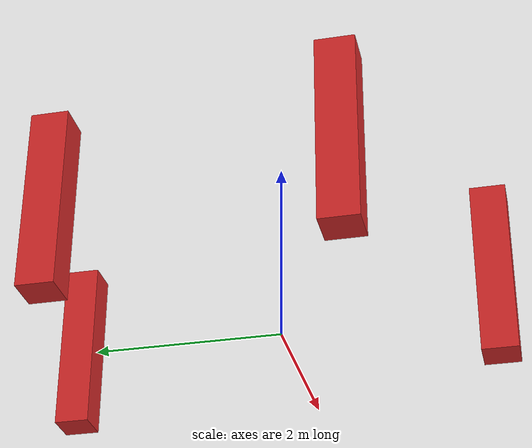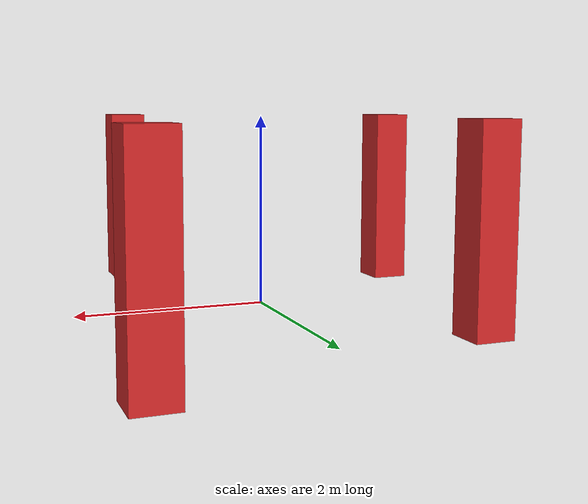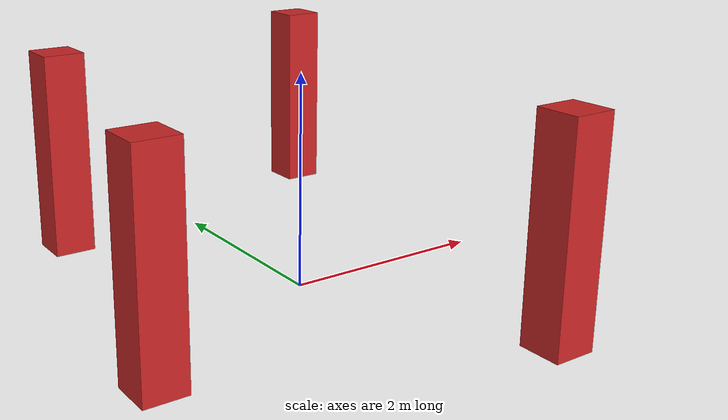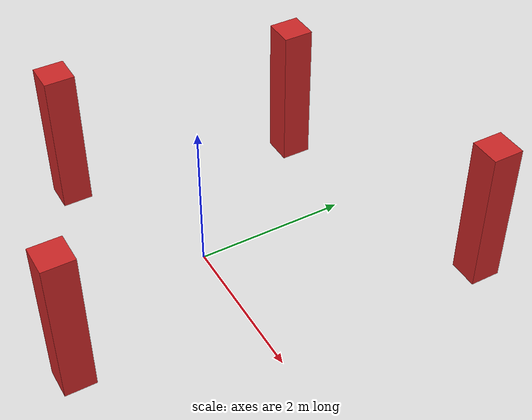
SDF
<sdf version='1.7'>
  <model name='obstacles'>
    <joint name='obstacle1_joint' type='fixed'>
      <pose relative_to='__model__'>-1.4 2.1 0.001 0 -0 0</pose>
      <parent>world</parent>
      <child>obstacle1_link</child>
    </joint>
    <link name='obstacle1_link'>
      <pose relative_to='obstacle1_joint'>0 0 0 0 -0 0</pose>
      <inertial>
        <pose>0 0 0 0 -0 0</pose>
        <mass>10</mass>
        <inertia>
          <ixx>1</ixx>
          <ixy>0</ixy>
          <ixz>0</ixz>
          <iyy>0.1</iyy>
          <iyz>0</iyz>
          <izz>0.1</izz>
        </inertia>
      </inertial>
      <collision name='obstacle1_link_collision'>
        <pose>0 0 1 0 -0 0</pose>
        <geometry>
          <box>
            <size>0.4 0.4 2</size>
          </box>
        </geometry>
        <surface>
          <contact>
            <ode/>
          </contact>
          <friction>
            <ode/>
          </friction>
        </surface>
      </collision>
      <visual name='obstacle1_link_visual'>
        <pose>0 0 1 0 -0 0</pose>
        <geometry>
          <box>
            <size>0.4 0.4 2</size>
          </box>
        </geometry>
        <material>
          <script>
            <name>Gazebo/Red</name>
            <uri>file://media/materials/scripts/gazebo.material</uri>
          </script>
        </material>
      </visual>
      <gravity>1</gravity>
      <velocity_decay/>
      <gravity>0</gravity>
      <sensor name='obstacle1_sensor' type='contact'>
        <always_on>1</always_on>
        <update_rate>30</update_rate>
        <contact>
          <collision>obstacle1_link_collision</collision>
          <topic>__default_topic__</topic>
        </contact>
        <plugin name='bumper_plugin' filename='libgazebo_ros_bumper.so'>
          <bumperTopicName>/gazebo/obstacle1_link_collisions</bumperTopicName>
          <frameName>odom</frameName>
        </plugin>
      </sensor>
    </link>
    <joint name='obstacle2_joint' type='fixed'>
      <pose relative_to='__model__'>-2 -1 0.001 0 -0 0</pose>
      <parent>world</parent>
      <child>obstacle2_link</child>
    </joint>
    <link name='obstacle2_link'>
      <pose relative_to='obstacle2_joint'>0 0 0 0 -0 0</pose>
      <inertial>
        <pose>0 0 0 0 -0 0</pose>
        <mass>10</mass>
        <inertia>
          <ixx>1</ixx>
          <ixy>0</ixy>
          <ixz>0</ixz>
          <iyy>0.1</iyy>
          <iyz>0</iyz>
          <izz>0.1</izz>
        </inertia>
      </inertial>
      <collision name='obstacle2_link_collision'>
        <pose>0 0 1 0 -0 0</pose>
        <geometry>
          <box>
            <size>0.4 0.4 2</size>
          </box>
        </geometry>
        <surface>
          <contact>
            <ode/>
          </contact>
          <friction>
            <ode/>
          </friction>
        </surface>
      </collision>
      <visual name='obstacle2_link_visual'>
        <pose>0 0 1 0 -0 0</pose>
        <geometry>
          <box>
            <size>0.4 0.4 2</size>
          </box>
        </geometry>
        <material>
          <script>
            <name>Gazebo/Red</name>
            <uri>file://media/materials/scripts/gazebo.material</uri>
          </script>
        </material>
      </visual>
      <gravity>1</gravity>
      <velocity_decay/>
      <gravity>0</gravity>
      <sensor name='obstacle2_sensor' type='contact'>
        <always_on>1</always_on>
        <update_rate>30</update_rate>
        <contact>
          <collision>obstacle2_link_collision</collision>
          <topic>__default_topic__</topic>
        </contact>
        <plugin name='bumper_plugin' filename='libgazebo_ros_bumper.so'>
          <bumperTopicName>/gazebo/obstacle2_link_collisions</bumperTopicName>
          <frameName>odom</frameName>
        </plugin>
      </sensor>
    </link>
    <joint name='obstacle3_joint' type='fixed'>
      <pose relative_to='__model__'>1 -2.18 0.001 0 -0 0</pose>
      <parent>world</parent>
      <child>obstacle3_link</child>
    </joint>
    <link name='obstacle3_link'>
      <pose relative_to='obstacle3_joint'>0 0 0 0 -0 0</pose>
      <inertial>
        <pose>0 0 0 0 -0 0</pose>
        <mass>10</mass>
        <inertia>
          <ixx>1</ixx>
          <ixy>0</ixy>
          <ixz>0</ixz>
          <iyy>0.1</iyy>
          <iyz>0</iyz>
          <izz>0.1</izz>
        </inertia>
      </inertial>
      <collision name='obstacle3_link_collision'>
        <pose>0 0 1 0 -0 0</pose>
        <geometry>
          <box>
            <size>0.4 0.4 2</size>
          </box>
        </geometry>
        <surface>
          <contact>
            <ode/>
          </contact>
          <friction>
            <ode/>
          </friction>
        </surface>
      </collision>
      <visual name='obstacle3_link_visual'>
        <pose>0 0 1 0 -0 0</pose>
        <geometry>
          <box>
            <size>0.4 0.4 2</size>
          </box>
        </geometry>
        <material>
          <script>
            <name>Gazebo/Red</name>
            <uri>file://media/materials/scripts/gazebo.material</uri>
          </script>
        </material>
      </visual>
      <gravity>1</gravity>
      <velocity_decay/>
      <gravity>0</gravity>
      <sensor name='obstacle3_sensor' type='contact'>
        <always_on>1</always_on>
        <update_rate>30</update_rate>
        <contact>
          <collision>obstacle3_link_collision</collision>
          <topic>__default_topic__</topic>
        </contact>
        <plugin name='bumper_plugin' filename='libgazebo_ros_bumper.so'>
          <bumperTopicName>/gazebo/obstacle3_link_collisions</bumperTopicName>
          <frameName>odom</frameName>
        </plugin>
      </sensor>
    </link>
    <joint name='obstacle4_joint' type='fixed'>
      <pose relative_to='__model__'>1.9 2.9 0.001 0 -0 0</pose>
      <parent>world</parent>
      <child>obstacle4_link</child>
    </joint>
    <link name='obstacle4_link'>
      <pose relative_to='obstacle4_joint'>0 0 0 0 -0 0</pose>
      <inertial>
        <pose>0 0 0 0 -0 0</pose>
        <mass>10</mass>
        <inertia>
          <ixx>1</ixx>
          <ixy>0</ixy>
          <ixz>0</ixz>
          <iyy>0.1</iyy>
          <iyz>0</iyz>
          <izz>0.1</izz>
        </inertia>
      </inertial>
      <collision name='obstacle4_link_collision'>
        <pose>0 0 1 0 -0 0</pose>
        <geometry>
          <box>
            <size>0.4 0.4 2</size>
          </box>
        </geometry>
        <surface>
          <contact>
            <ode/>
          </contact>
          <friction>
            <ode/>
          </friction>
        </surface>
      </collision>
      <visual name='obstacle4_link_visual'>
        <pose>0 0 1 0 -0 0</pose>
        <geometry>
          <box>
            <size>0.4 0.4 2</size>
          </box>
        </geometry>
        <material>
          <script>
            <name>Gazebo/Red</name>
            <uri>file://media/materials/scripts/gazebo.material</uri>
          </script>
        </material>
      </visual>
      <gravity>1</gravity>
      <velocity_decay/>
      <gravity>0</gravity>
      <sensor name='obstacle4_sensor' type='contact'>
        <always_on>1</always_on>
        <update_rate>30</update_rate>
        <contact>
          <collision>obstacle4_link_collision</collision>
          <topic>__default_topic__</topic>
        </contact>
        <plugin name='bumper_plugin' filename='libgazebo_ros_bumper.so'>
          <bumperTopicName>/gazebo/obstacle4_link_collisions</bumperTopicName>
          <frameName>odom</frameName>
        </plugin>
      </sensor>
    </link>
  </model>
</sdf>
